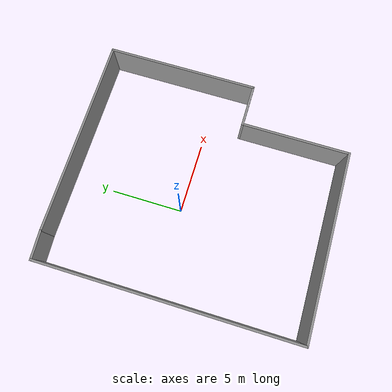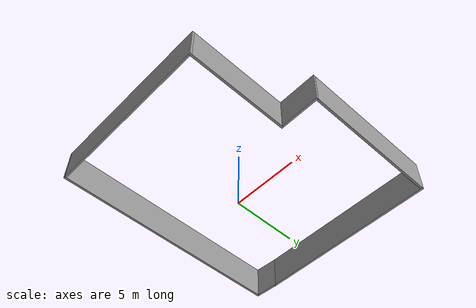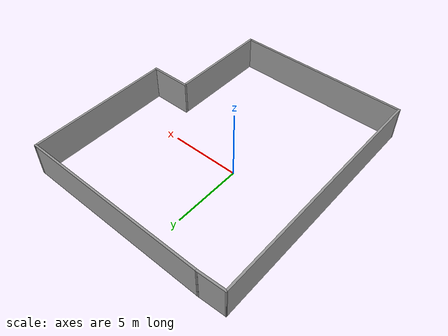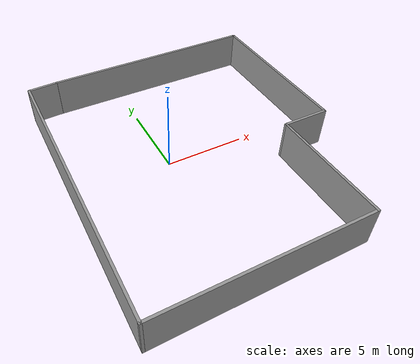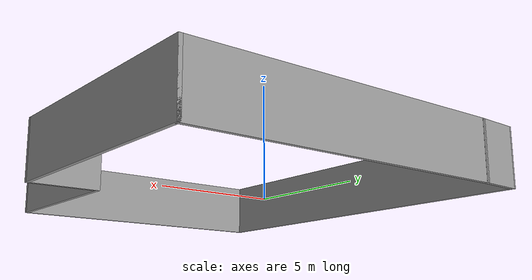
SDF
<?xml version='1.0'?>
<sdf version='1.7'>
  <model name='modified_world'>
    <pose>1.62303 -0.928031 0 0 -0 0</pose>
    <link name='Wall_10'>
      <collision name='Wall_10_Collision'>
        <geometry>
          <box>
            <size>12.75 0.15 2.5</size>
          </box>
        </geometry>
        <pose>0 0 1.25 0 -0 0</pose>
      </collision>
      <visual name='Wall_10_Visual'>
        <pose>0 0 1.25 0 -0 0</pose>
        <geometry>
          <box>
            <size>12.75 0.15 2.5</size>
          </box>
        </geometry>
        <material>
          <script>
            <uri>file://media/materials/scripts/gazebo.material</uri>
            <name>Gazebo/Grey</name>
          </script>
          <ambient>1 1 1 1</ambient>
        </material>
        <meta>
          <layer>0</layer>
        </meta>
      </visual>
      <pose>-1.42303 -8.85197 0 0 -0 3.14159</pose>
    </link>
    <link name='Wall_11'>
      <collision name='Wall_11_Collision'>
        <geometry>
          <box>
            <size>17.75 0.15 2.5</size>
          </box>
        </geometry>
        <pose>0 0 1.25 0 -0 0</pose>
      </collision>
      <visual name='Wall_11_Visual'>
        <pose>0 0 1.25 0 -0 0</pose>
        <geometry>
          <box>
            <size>17.75 0.15 2.5</size>
          </box>
        </geometry>
        <material>
          <script>
            <uri>file://media/materials/scripts/gazebo.material</uri>
            <name>Gazebo/Grey</name>
          </script>
          <ambient>1 1 1 1</ambient>
        </material>
        <meta>
          <layer>0</layer>
        </meta>
      </visual>
      <pose>-7.72303 -0.051969 0 0 -0 1.5708</pose>
    </link>
    <link name='Wall_12'>
      <collision name='Wall_12_Collision'>
        <geometry>
          <box>
            <size>2.0027 0.15 2.5</size>
          </box>
        </geometry>
        <pose>0 0 1.25 0 -0 0</pose>
      </collision>
      <visual name='Wall_12_Visual'>
        <pose>0 0 1.25 0 -0 0</pose>
        <geometry>
          <box>
            <size>2.0027 0.15 2.5</size>
          </box>
        </geometry>
        <material>
          <script>
            <uri>file://media/materials/scripts/gazebo.material</uri>
            <name>Gazebo/Grey</name>
          </script>
          <ambient>1 1 1 1</ambient>
        </material>
        <meta>
          <layer>0</layer>
        </meta>
      </visual>
      <pose>-6.79803 8.79803 0 0 -0 0.054001</pose>
    </link>
    <link name='Wall_6'>
      <collision name='Wall_6_Collision'>
        <geometry>
          <box>
            <size>13.75 0.15 2.5</size>
          </box>
        </geometry>
        <pose>0 0 1.25 0 -0 0</pose>
      </collision>
      <visual name='Wall_6_Visual'>
        <pose>0 0 1.25 0 -0 0</pose>
        <geometry>
          <box>
            <size>13.75 0.15 2.5</size>
          </box>
        </geometry>
        <material>
          <script>
            <uri>file://media/materials/scripts/gazebo.material</uri>
            <name>Gazebo/Grey</name>
          </script>
          <ambient>1 1 1 1</ambient>
        </material>
        <meta>
          <layer>0</layer>
        </meta>
      </visual>
      <pose>0.926969 8.84803 0 0 -0 0</pose>
    </link>
    <link name='Wall_7'>
      <collision name='Wall_7_Collision'>
        <geometry>
          <box>
            <size>10.5 0.15 2.5</size>
          </box>
        </geometry>
        <pose>0 0 1.25 0 -0 0</pose>
      </collision>
      <visual name='Wall_7_Visual'>
        <pose>0 0 1.25 0 -0 0</pose>
        <geometry>
          <box>
            <size>10.5 0.15 2.5</size>
          </box>
        </geometry>
        <material>
          <script>
            <uri>file://media/materials/scripts/gazebo.material</uri>
            <name>Gazebo/Grey</name>
          </script>
          <ambient>1 1 1 1</ambient>
        </material>
        <meta>
          <layer>0</layer>
        </meta>
      </visual>
      <pose>7.72697 3.67303 0 0 -0 -1.5708</pose>
    </link>
    <link name='Wall_8'>
      <collision name='Wall_8_Collision'>
        <geometry>
          <box>
            <size>3 0.15 2.5</size>
          </box>
        </geometry>
        <pose>0 0 1.25 0 -0 0</pose>
      </collision>
      <visual name='Wall_8_Visual'>
        <pose>0 0 1.25 0 -0 0</pose>
        <geometry>
          <box>
            <size>3 0.15 2.5</size>
          </box>
        </geometry>
        <material>
          <script>
            <uri>file://media/materials/scripts/gazebo.material</uri>
            <name>Gazebo/Grey</name>
          </script>
          <ambient>1 1 1 1</ambient>
        </material>
        <meta>
          <layer>0</layer>
        </meta>
      </visual>
      <pose>6.30197 -1.50197 0 0 -0 3.14159</pose>
    </link>
    <link name='Wall_9'>
      <collision name='Wall_9_Collision'>
        <geometry>
          <box>
            <size>7.5 0.15 2.5</size>
          </box>
        </geometry>
        <pose>0 0 1.25 0 -0 0</pose>
      </collision>
      <visual name='Wall_9_Visual'>
        <pose>0 0 1.25 0 -0 0</pose>
        <geometry>
          <box>
            <size>7.5 0.15 2.5</size>
          </box>
        </geometry>
        <material>
          <script>
            <uri>file://media/materials/scripts/gazebo.material</uri>
            <name>Gazebo/Grey</name>
          </script>
          <ambient>1 1 1 1</ambient>
        </material>
        <meta>
          <layer>0</layer>
        </meta>
      </visual>
      <pose>4.87697 -5.17697 0 0 -0 -1.5708</pose>
    </link>
    <static>1</static>
  </model>
</sdf>
